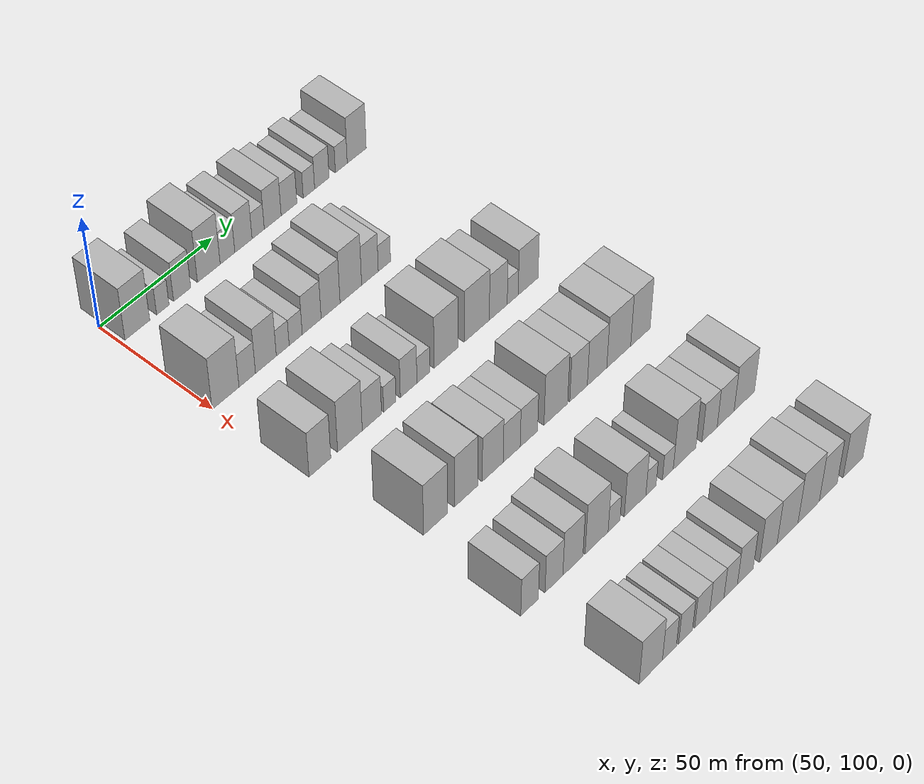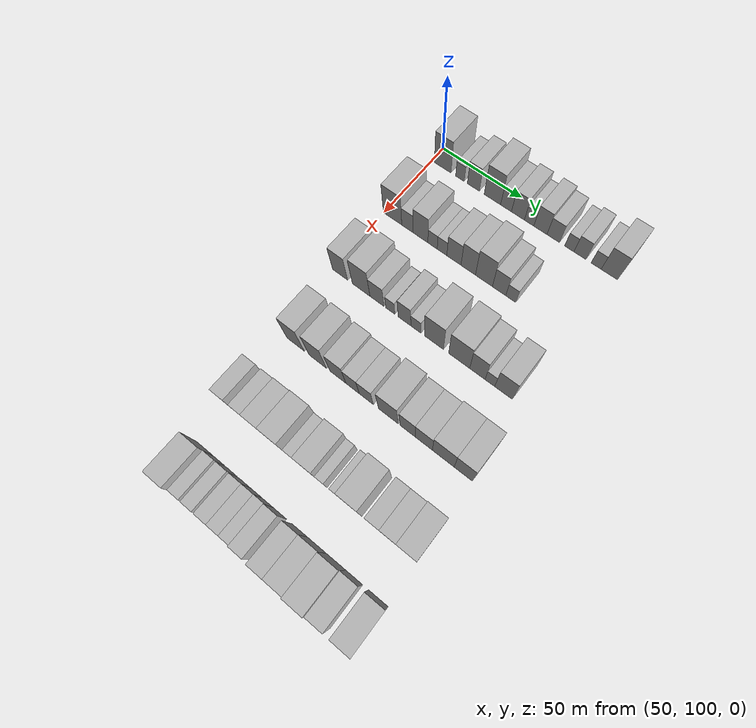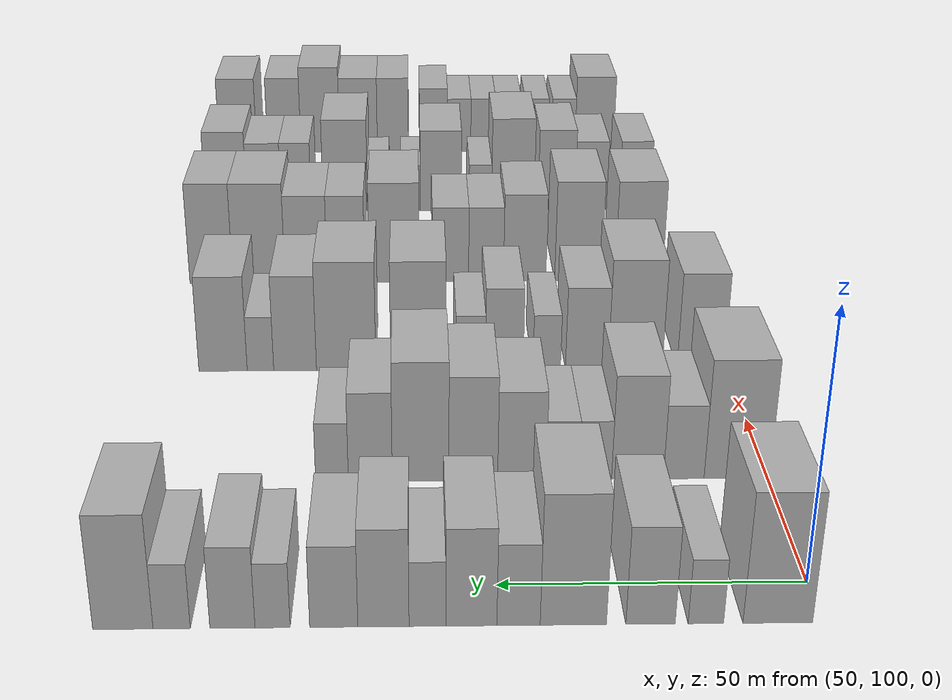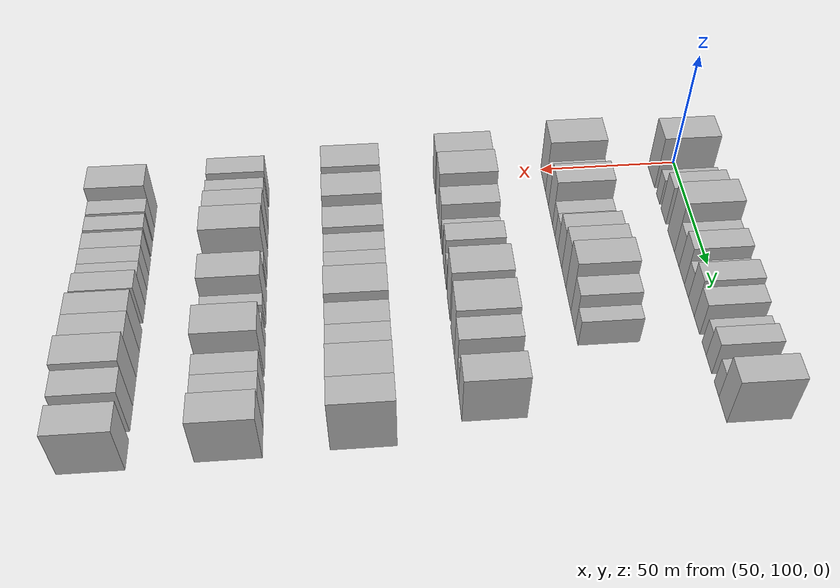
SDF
<sdf version="1.6">
 <world name="default">
  <model name="building_79">
   <static>1</static>
   <pose>50.0000 106.8875 0 0.000000 0.000000 0.000000</pose>
   <link name="link">
    <pose>0 0 12.00 0 0 0</pose>
    <collision name="collision"><geometry><box><size>20.0000 10.8072 24.0000</size></box></geometry></collision>
    <visual name="visual">
     <cast_shadows>0</cast_shadows>
     <geometry><box><size>20.0000 10.8072 24.0000</size></box></geometry>
     <material>
      <script>
       <uri>model://HANNAS_wall/materials/scripts</uri>
       <uri>model://HANNAS_wall/materials/textures</uri>
       <name>vrc/HANNAS_wall</name>
      </script>
     </material>
    </visual>
   </link>
  </model>
  <model name="building_80">
   <static>1</static>
   <pose>50.0000 118.0348 0 0.000000 0.000000 0.000000</pose>
   <link name="link">
    <pose>0 0 6.00 0 0 0</pose>
    <collision name="collision"><geometry><box><size>20.0000 5.4872 12.0000</size></box></geometry></collision>
    <visual name="visual">
     <cast_shadows>0</cast_shadows>
     <geometry><box><size>20.0000 5.4872 12.0000</size></box></geometry>
     <material>
      <script>
       <uri>model://HANNAS_wall/materials/scripts</uri>
       <uri>model://HANNAS_wall/materials/textures</uri>
       <name>vrc/HANNAS_wall</name>
      </script>
     </material>
    </visual>
   </link>
  </model>
  <model name="building_81">
   <static>1</static>
   <pose>50.0000 126.5961 0 0.000000 0.000000 0.000000</pose>
   <link name="link">
    <pose>0 0 9.00 0 0 0</pose>
    <collision name="collision"><geometry><box><size>20.0000 7.6355 18.0000</size></box></geometry></collision>
    <visual name="visual">
     <cast_shadows>0</cast_shadows>
     <geometry><box><size>20.0000 7.6355 18.0000</size></box></geometry>
     <material>
      <script>
       <uri>model://HANNAS_wall/materials/scripts</uri>
       <uri>model://HANNAS_wall/materials/textures</uri>
       <name>vrc/HANNAS_wall</name>
      </script>
     </material>
    </visual>
   </link>
  </model>
  <model name="building_82">
   <static>1</static>
   <pose>50.0000 138.5358 0 0.000000 0.000000 0.000000</pose>
   <link name="link">
    <pose>0 0 12.00 0 0 0</pose>
    <collision name="collision"><geometry><box><size>20.0000 10.2439 24.0000</size></box></geometry></collision>
    <visual name="visual">
     <cast_shadows>0</cast_shadows>
     <geometry><box><size>20.0000 10.2439 24.0000</size></box></geometry>
     <material>
      <script>
       <uri>model://HANNAS_wall/materials/scripts</uri>
       <uri>model://HANNAS_wall/materials/textures</uri>
       <name>vrc/HANNAS_wall</name>
      </script>
     </material>
    </visual>
   </link>
  </model>
  <model name="building_83">
   <static>1</static>
   <pose>50.0000 146.9961 0 0.000000 0.000000 0.000000</pose>
   <link name="link">
    <pose>0 0 7.50 0 0 0</pose>
    <collision name="collision"><geometry><box><size>20.0000 6.6766 15.0000</size></box></geometry></collision>
    <visual name="visual">
     <cast_shadows>0</cast_shadows>
     <geometry><box><size>20.0000 6.6766 15.0000</size></box></geometry>
     <material>
      <script>
       <uri>model://HANNAS_wall/materials/scripts</uri>
       <uri>model://HANNAS_wall/materials/textures</uri>
       <name>vrc/HANNAS_wall</name>
      </script>
     </material>
    </visual>
   </link>
  </model>
  <model name="building_84">
   <static>1</static>
   <pose>50.0000 154.2788 0 0.000000 0.000000 0.000000</pose>
   <link name="link">
    <pose>0 0 9.00 0 0 0</pose>
    <collision name="collision"><geometry><box><size>20.0000 7.8888 18.0000</size></box></geometry></collision>
    <visual name="visual">
     <cast_shadows>0</cast_shadows>
     <geometry><box><size>20.0000 7.8888 18.0000</size></box></geometry>
     <material>
      <script>
       <uri>model://HANNAS_wall/materials/scripts</uri>
       <uri>model://HANNAS_wall/materials/textures</uri>
       <name>vrc/HANNAS_wall</name>
      </script>
     </material>
    </visual>
   </link>
  </model>
  <model name="building_85">
   <static>1</static>
   <pose>50.0000 161.0475 0 0.000000 0.000000 0.000000</pose>
   <link name="link">
    <pose>0 0 6.00 0 0 0</pose>
    <collision name="collision"><geometry><box><size>20.0000 5.6485 12.0000</size></box></geometry></collision>
    <visual name="visual">
     <cast_shadows>0</cast_shadows>
     <geometry><box><size>20.0000 5.6485 12.0000</size></box></geometry>
     <material>
      <script>
       <uri>model://HANNAS_wall/materials/scripts</uri>
       <uri>model://HANNAS_wall/materials/textures</uri>
       <name>vrc/HANNAS_wall</name>
      </script>
     </material>
    </visual>
   </link>
  </model>
  <model name="building_86">
   <static>1</static>
   <pose>50.0000 167.8121 0 0.000000 0.000000 0.000000</pose>
   <link name="link">
    <pose>0 0 9.00 0 0 0</pose>
    <collision name="collision"><geometry><box><size>20.0000 7.8808 18.0000</size></box></geometry></collision>
    <visual name="visual">
     <cast_shadows>0</cast_shadows>
     <geometry><box><size>20.0000 7.8808 18.0000</size></box></geometry>
     <material>
      <script>
       <uri>model://HANNAS_wall/materials/scripts</uri>
       <uri>model://HANNAS_wall/materials/textures</uri>
       <name>vrc/HANNAS_wall</name>
      </script>
     </material>
    </visual>
   </link>
  </model>
  <model name="building_87">
   <static>1</static>
   <pose>50.0000 175.4566 0 0.000000 0.000000 0.000000</pose>
   <link name="link">
    <pose>0 0 7.50 0 0 0</pose>
    <collision name="collision"><geometry><box><size>20.0000 7.4082 15.0000</size></box></geometry></collision>
    <visual name="visual">
     <cast_shadows>0</cast_shadows>
     <geometry><box><size>20.0000 7.4082 15.0000</size></box></geometry>
     <material>
      <script>
       <uri>model://HANNAS_wall/materials/scripts</uri>
       <uri>model://HANNAS_wall/materials/textures</uri>
       <name>vrc/HANNAS_wall</name>
      </script>
     </material>
    </visual>
   </link>
  </model>
  <model name="building_88">
   <static>1</static>
   <pose>50.0000 184.8614 0 0.000000 0.000000 0.000000</pose>
   <link name="link">
    <pose>0 0 6.00 0 0 0</pose>
    <collision name="collision"><geometry><box><size>20.0000 5.4014 12.0000</size></box></geometry></collision>
    <visual name="visual">
     <cast_shadows>0</cast_shadows>
     <geometry><box><size>20.0000 5.4014 12.0000</size></box></geometry>
     <material>
      <script>
       <uri>model://HANNAS_wall/materials/scripts</uri>
       <uri>model://HANNAS_wall/materials/textures</uri>
       <name>vrc/HANNAS_wall</name>
      </script>
     </material>
    </visual>
   </link>
  </model>
  <model name="building_89">
   <static>1</static>
   <pose>50.0000 191.0295 0 0.000000 0.000000 0.000000</pose>
   <link name="link">
    <pose>0 0 7.50 0 0 0</pose>
    <collision name="collision"><geometry><box><size>20.0000 6.9348 15.0000</size></box></geometry></collision>
    <visual name="visual">
     <cast_shadows>0</cast_shadows>
     <geometry><box><size>20.0000 6.9348 15.0000</size></box></geometry>
     <material>
      <script>
       <uri>model://HANNAS_wall/materials/scripts</uri>
       <uri>model://HANNAS_wall/materials/textures</uri>
       <name>vrc/HANNAS_wall</name>
      </script>
     </material>
    </visual>
   </link>
  </model>
  <model name="building_90">
   <static>1</static>
   <pose>50.0000 200.3569 0 0.000000 0.000000 0.000000</pose>
   <link name="link">
    <pose>0 0 6.00 0 0 0</pose>
    <collision name="collision"><geometry><box><size>20.0000 5.7200 12.0000</size></box></geometry></collision>
    <visual name="visual">
     <cast_shadows>0</cast_shadows>
     <geometry><box><size>20.0000 5.7200 12.0000</size></box></geometry>
     <material>
      <script>
       <uri>model://HANNAS_wall/materials/scripts</uri>
       <uri>model://HANNAS_wall/materials/textures</uri>
       <name>vrc/HANNAS_wall</name>
      </script>
     </material>
    </visual>
   </link>
  </model>
  <model name="building_91">
   <static>1</static>
   <pose>50.0000 207.8361 0 0.000000 0.000000 0.000000</pose>
   <link name="link">
    <pose>0 0 10.50 0 0 0</pose>
    <collision name="collision"><geometry><box><size>20.0000 9.2384 21.0000</size></box></geometry></collision>
    <visual name="visual">
     <cast_shadows>0</cast_shadows>
     <geometry><box><size>20.0000 9.2384 21.0000</size></box></geometry>
     <material>
      <script>
       <uri>model://HANNAS_wall/materials/scripts</uri>
       <uri>model://HANNAS_wall/materials/textures</uri>
       <name>vrc/HANNAS_wall</name>
      </script>
     </material>
    </visual>
   </link>
  </model>
  <model name="building_215">
   <static>1</static>
   <pose>90.0000 105.5255 0 0.000000 0.000000 0.000000</pose>
   <link name="link">
    <pose>0 0 12.00 0 0 0</pose>
    <collision name="collision"><geometry><box><size>20.0000 11.7292 24.0000</size></box></geometry></collision>
    <visual name="visual">
     <cast_shadows>0</cast_shadows>
     <geometry><box><size>20.0000 11.7292 24.0000</size></box></geometry>
     <material>
      <script>
       <uri>model://HANNAS_wall/materials/scripts</uri>
       <uri>model://HANNAS_wall/materials/textures</uri>
       <name>vrc/HANNAS_wall</name>
      </script>
     </material>
    </visual>
   </link>
  </model>
  <model name="building_216">
   <static>1</static>
   <pose>90.0000 115.0183 0 0.000000 0.000000 0.000000</pose>
   <link name="link">
    <pose>0 0 7.50 0 0 0</pose>
    <collision name="collision"><geometry><box><size>20.0000 7.2564 15.0000</size></box></geometry></collision>
    <visual name="visual">
     <cast_shadows>0</cast_shadows>
     <geometry><box><size>20.0000 7.2564 15.0000</size></box></geometry>
     <material>
      <script>
       <uri>model://HANNAS_wall/materials/scripts</uri>
       <uri>model://HANNAS_wall/materials/textures</uri>
       <name>vrc/HANNAS_wall</name>
      </script>
     </material>
    </visual>
   </link>
  </model>
  <model name="building_217">
   <static>1</static>
   <pose>90.0000 123.2755 0 0.000000 0.000000 0.000000</pose>
   <link name="link">
    <pose>0 0 10.50 0 0 0</pose>
    <collision name="collision"><geometry><box><size>20.0000 9.2580 21.0000</size></box></geometry></collision>
    <visual name="visual">
     <cast_shadows>0</cast_shadows>
     <geometry><box><size>20.0000 9.2580 21.0000</size></box></geometry>
     <material>
      <script>
       <uri>model://HANNAS_wall/materials/scripts</uri>
       <uri>model://HANNAS_wall/materials/textures</uri>
       <name>vrc/HANNAS_wall</name>
      </script>
     </material>
    </visual>
   </link>
  </model>
  <model name="building_218">
   <static>1</static>
   <pose>90.0000 130.7831 0 0.000000 0.000000 0.000000</pose>
   <link name="link">
    <pose>0 0 6.00 0 0 0</pose>
    <collision name="collision"><geometry><box><size>20.0000 5.7571 12.0000</size></box></geometry></collision>
    <visual name="visual">
     <cast_shadows>0</cast_shadows>
     <geometry><box><size>20.0000 5.7571 12.0000</size></box></geometry>
     <material>
      <script>
       <uri>model://HANNAS_wall/materials/scripts</uri>
       <uri>model://HANNAS_wall/materials/textures</uri>
       <name>vrc/HANNAS_wall</name>
      </script>
     </material>
    </visual>
   </link>
  </model>
  <model name="building_219">
   <static>1</static>
   <pose>90.0000 136.6204 0 0.000000 0.000000 0.000000</pose>
   <link name="link">
    <pose>0 0 6.00 0 0 0</pose>
    <collision name="collision"><geometry><box><size>20.0000 5.9175 12.0000</size></box></geometry></collision>
    <visual name="visual">
     <cast_shadows>0</cast_shadows>
     <geometry><box><size>20.0000 5.9175 12.0000</size></box></geometry>
     <material>
      <script>
       <uri>model://HANNAS_wall/materials/scripts</uri>
       <uri>model://HANNAS_wall/materials/textures</uri>
       <name>vrc/HANNAS_wall</name>
      </script>
     </material>
    </visual>
   </link>
  </model>
  <model name="building_220">
   <static>1</static>
   <pose>90.0000 143.8834 0 0.000000 0.000000 0.000000</pose>
   <link name="link">
    <pose>0 0 9.00 0 0 0</pose>
    <collision name="collision"><geometry><box><size>20.0000 8.6084 18.0000</size></box></geometry></collision>
    <visual name="visual">
     <cast_shadows>0</cast_shadows>
     <geometry><box><size>20.0000 8.6084 18.0000</size></box></geometry>
     <material>
      <script>
       <uri>model://HANNAS_wall/materials/scripts</uri>
       <uri>model://HANNAS_wall/materials/textures</uri>
       <name>vrc/HANNAS_wall</name>
      </script>
     </material>
    </visual>
   </link>
  </model>
  <model name="building_221">
   <static>1</static>
   <pose>90.0000 152.5299 0 0.000000 0.000000 0.000000</pose>
   <link name="link">
    <pose>0 0 10.50 0 0 0</pose>
    <collision name="collision"><geometry><box><size>20.0000 8.6846 21.0000</size></box></geometry></collision>
    <visual name="visual">
     <cast_shadows>0</cast_shadows>
     <geometry><box><size>20.0000 8.6846 21.0000</size></box></geometry>
     <material>
      <script>
       <uri>model://HANNAS_wall/materials/scripts</uri>
       <uri>model://HANNAS_wall/materials/textures</uri>
       <name>vrc/HANNAS_wall</name>
      </script>
     </material>
    </visual>
   </link>
  </model>
  <model name="building_222">
   <static>1</static>
   <pose>90.0000 161.8874 0 0.000000 0.000000 0.000000</pose>
   <link name="link">
    <pose>0 0 12.00 0 0 0</pose>
    <collision name="collision"><geometry><box><size>20.0000 10.0305 24.0000</size></box></geometry></collision>
    <visual name="visual">
     <cast_shadows>0</cast_shadows>
     <geometry><box><size>20.0000 10.0305 24.0000</size></box></geometry>
     <material>
      <script>
       <uri>model://HANNAS_wall/materials/scripts</uri>
       <uri>model://HANNAS_wall/materials/textures</uri>
       <name>vrc/HANNAS_wall</name>
      </script>
     </material>
    </visual>
   </link>
  </model>
  <model name="building_223">
   <static>1</static>
   <pose>90.0000 170.8063 0 0.000000 0.000000 0.000000</pose>
   <link name="link">
    <pose>0 0 9.00 0 0 0</pose>
    <collision name="collision"><geometry><box><size>20.0000 7.8072 18.0000</size></box></geometry></collision>
    <visual name="visual">
     <cast_shadows>0</cast_shadows>
     <geometry><box><size>20.0000 7.8072 18.0000</size></box></geometry>
     <material>
      <script>
       <uri>model://HANNAS_wall/materials/scripts</uri>
       <uri>model://HANNAS_wall/materials/textures</uri>
       <name>vrc/HANNAS_wall</name>
      </script>
     </material>
    </visual>
   </link>
  </model>
  <model name="building_224">
   <static>1</static>
   <pose>90.0000 177.6095 0 0.000000 0.000000 0.000000</pose>
   <link name="link">
    <pose>0 0 6.00 0 0 0</pose>
    <collision name="collision"><geometry><box><size>20.0000 5.7991 12.0000</size></box></geometry></collision>
    <visual name="visual">
     <cast_shadows>0</cast_shadows>
     <geometry><box><size>20.0000 5.7991 12.0000</size></box></geometry>
     <material>
      <script>
       <uri>model://HANNAS_wall/materials/scripts</uri>
       <uri>model://HANNAS_wall/materials/textures</uri>
       <name>vrc/HANNAS_wall</name>
      </script>
     </material>
    </visual>
   </link>
  </model>
  <model name="building_358">
   <static>1</static>
   <pose>130.0000 105.1671 0 0.000000 0.000000 0.000000</pose>
   <link name="link">
    <pose>0 0 10.50 0 0 0</pose>
    <collision name="collision"><geometry><box><size>20.0000 9.5088 21.0000</size></box></geometry></collision>
    <visual name="visual">
     <cast_shadows>0</cast_shadows>
     <geometry><box><size>20.0000 9.5088 21.0000</size></box></geometry>
     <material>
      <script>
       <uri>model://HANNAS_wall/materials/scripts</uri>
       <uri>model://HANNAS_wall/materials/textures</uri>
       <name>vrc/HANNAS_wall</name>
      </script>
     </material>
    </visual>
   </link>
  </model>
  <model name="building_359">
   <static>1</static>
   <pose>130.0000 118.3889 0 0.000000 0.000000 0.000000</pose>
   <link name="link">
    <pose>0 0 12.00 0 0 0</pose>
    <collision name="collision"><geometry><box><size>20.0000 10.9349 24.0000</size></box></geometry></collision>
    <visual name="visual">
     <cast_shadows>0</cast_shadows>
     <geometry><box><size>20.0000 10.9349 24.0000</size></box></geometry>
     <material>
      <script>
       <uri>model://HANNAS_wall/materials/scripts</uri>
       <uri>model://HANNAS_wall/materials/textures</uri>
       <name>vrc/HANNAS_wall</name>
      </script>
     </material>
    </visual>
   </link>
  </model>
  <model name="building_360">
   <static>1</static>
   <pose>130.0000 128.1711 0 0.000000 0.000000 0.000000</pose>
   <link name="link">
    <pose>0 0 9.00 0 0 0</pose>
    <collision name="collision"><geometry><box><size>20.0000 8.6294 18.0000</size></box></geometry></collision>
    <visual name="visual">
     <cast_shadows>0</cast_shadows>
     <geometry><box><size>20.0000 8.6294 18.0000</size></box></geometry>
     <material>
      <script>
       <uri>model://HANNAS_wall/materials/scripts</uri>
       <uri>model://HANNAS_wall/materials/textures</uri>
       <name>vrc/HANNAS_wall</name>
      </script>
     </material>
    </visual>
   </link>
  </model>
  <model name="building_361">
   <static>1</static>
   <pose>130.0000 136.2585 0 0.000000 0.000000 0.000000</pose>
   <link name="link">
    <pose>0 0 6.00 0 0 0</pose>
    <collision name="collision"><geometry><box><size>20.0000 5.5454 12.0000</size></box></geometry></collision>
    <visual name="visual">
     <cast_shadows>0</cast_shadows>
     <geometry><box><size>20.0000 5.5454 12.0000</size></box></geometry>
     <material>
      <script>
       <uri>model://HANNAS_wall/materials/scripts</uri>
       <uri>model://HANNAS_wall/materials/textures</uri>
       <name>vrc/HANNAS_wall</name>
      </script>
     </material>
    </visual>
   </link>
  </model>
  <model name="building_362">
   <static>1</static>
   <pose>130.0000 144.8263 0 0.000000 0.000000 0.000000</pose>
   <link name="link">
    <pose>0 0 9.00 0 0 0</pose>
    <collision name="collision"><geometry><box><size>20.0000 7.5904 18.0000</size></box></geometry></collision>
    <visual name="visual">
     <cast_shadows>0</cast_shadows>
     <geometry><box><size>20.0000 7.5904 18.0000</size></box></geometry>
     <material>
      <script>
       <uri>model://HANNAS_wall/materials/scripts</uri>
       <uri>model://HANNAS_wall/materials/textures</uri>
       <name>vrc/HANNAS_wall</name>
      </script>
     </material>
    </visual>
   </link>
  </model>
  <model name="building_363">
   <static>1</static>
   <pose>130.0000 151.5975 0 0.000000 0.000000 0.000000</pose>
   <link name="link">
    <pose>0 0 6.00 0 0 0</pose>
    <collision name="collision"><geometry><box><size>20.0000 5.9520 12.0000</size></box></geometry></collision>
    <visual name="visual">
     <cast_shadows>0</cast_shadows>
     <geometry><box><size>20.0000 5.9520 12.0000</size></box></geometry>
     <material>
      <script>
       <uri>model://HANNAS_wall/materials/scripts</uri>
       <uri>model://HANNAS_wall/materials/textures</uri>
       <name>vrc/HANNAS_wall</name>
      </script>
     </material>
    </visual>
   </link>
  </model>
  <model name="building_364">
   <static>1</static>
   <pose>130.0000 162.1271 0 0.000000 0.000000 0.000000</pose>
   <link name="link">
    <pose>0 0 12.00 0 0 0</pose>
    <collision name="collision"><geometry><box><size>20.0000 11.1071 24.0000</size></box></geometry></collision>
    <visual name="visual">
     <cast_shadows>0</cast_shadows>
     <geometry><box><size>20.0000 11.1071 24.0000</size></box></geometry>
     <material>
      <script>
       <uri>model://HANNAS_wall/materials/scripts</uri>
       <uri>model://HANNAS_wall/materials/textures</uri>
       <name>vrc/HANNAS_wall</name>
      </script>
     </material>
    </visual>
   </link>
  </model>
  <model name="building_365">
   <static>1</static>
   <pose>130.0000 176.6430 0 0.000000 0.000000 0.000000</pose>
   <link name="link">
    <pose>0 0 12.00 0 0 0</pose>
    <collision name="collision"><geometry><box><size>20.0000 11.9247 24.0000</size></box></geometry></collision>
    <visual name="visual">
     <cast_shadows>0</cast_shadows>
     <geometry><box><size>20.0000 11.9247 24.0000</size></box></geometry>
     <material>
      <script>
       <uri>model://HANNAS_wall/materials/scripts</uri>
       <uri>model://HANNAS_wall/materials/textures</uri>
       <name>vrc/HANNAS_wall</name>
      </script>
     </material>
    </visual>
   </link>
  </model>
  <model name="building_366">
   <static>1</static>
   <pose>130.0000 186.8994 0 0.000000 0.000000 0.000000</pose>
   <link name="link">
    <pose>0 0 10.50 0 0 0</pose>
    <collision name="collision"><geometry><box><size>20.0000 8.5882 21.0000</size></box></geometry></collision>
    <visual name="visual">
     <cast_shadows>0</cast_shadows>
     <geometry><box><size>20.0000 8.5882 21.0000</size></box></geometry>
     <material>
      <script>
       <uri>model://HANNAS_wall/materials/scripts</uri>
       <uri>model://HANNAS_wall/materials/textures</uri>
       <name>vrc/HANNAS_wall</name>
      </script>
     </material>
    </visual>
   </link>
  </model>
  <model name="building_367">
   <static>1</static>
   <pose>130.0000 193.8571 0 0.000000 0.000000 0.000000</pose>
   <link name="link">
    <pose>0 0 6.00 0 0 0</pose>
    <collision name="collision"><geometry><box><size>20.0000 5.3273 12.0000</size></box></geometry></collision>
    <visual name="visual">
     <cast_shadows>0</cast_shadows>
     <geometry><box><size>20.0000 5.3273 12.0000</size></box></geometry>
     <material>
      <script>
       <uri>model://HANNAS_wall/materials/scripts</uri>
       <uri>model://HANNAS_wall/materials/textures</uri>
       <name>vrc/HANNAS_wall</name>
      </script>
     </material>
    </visual>
   </link>
  </model>
  <model name="building_368">
   <static>1</static>
   <pose>130.0000 201.3632 0 0.000000 0.000000 0.000000</pose>
   <link name="link">
    <pose>0 0 10.50 0 0 0</pose>
    <collision name="collision"><geometry><box><size>20.0000 9.6849 21.0000</size></box></geometry></collision>
    <visual name="visual">
     <cast_shadows>0</cast_shadows>
     <geometry><box><size>20.0000 9.6849 21.0000</size></box></geometry>
     <material>
      <script>
       <uri>model://HANNAS_wall/materials/scripts</uri>
       <uri>model://HANNAS_wall/materials/textures</uri>
       <name>vrc/HANNAS_wall</name>
      </script>
     </material>
    </visual>
   </link>
  </model>
  <model name="building_487">
   <static>1</static>
   <pose>170.0000 112.3662 0 0.000000 0.000000 0.000000</pose>
   <link name="link">
    <pose>0 0 12.00 0 0 0</pose>
    <collision name="collision"><geometry><box><size>20.0000 10.7012 24.0000</size></box></geometry></collision>
    <visual name="visual">
     <cast_shadows>0</cast_shadows>
     <geometry><box><size>20.0000 10.7012 24.0000</size></box></geometry>
     <material>
      <script>
       <uri>model://HANNAS_wall/materials/scripts</uri>
       <uri>model://HANNAS_wall/materials/textures</uri>
       <name>vrc/HANNAS_wall</name>
      </script>
     </material>
    </visual>
   </link>
  </model>
  <model name="building_488">
   <static>1</static>
   <pose>170.0000 125.9970 0 0.000000 0.000000 0.000000</pose>
   <link name="link">
    <pose>0 0 12.00 0 0 0</pose>
    <collision name="collision"><geometry><box><size>20.0000 10.5605 24.0000</size></box></geometry></collision>
    <visual name="visual">
     <cast_shadows>0</cast_shadows>
     <geometry><box><size>20.0000 10.5605 24.0000</size></box></geometry>
     <material>
      <script>
       <uri>model://HANNAS_wall/materials/scripts</uri>
       <uri>model://HANNAS_wall/materials/textures</uri>
       <name>vrc/HANNAS_wall</name>
      </script>
     </material>
    </visual>
   </link>
  </model>
  <model name="building_489">
   <static>1</static>
   <pose>170.0000 138.0459 0 0.000000 0.000000 0.000000</pose>
   <link name="link">
    <pose>0 0 10.50 0 0 0</pose>
    <collision name="collision"><geometry><box><size>20.0000 9.5371 21.0000</size></box></geometry></collision>
    <visual name="visual">
     <cast_shadows>0</cast_shadows>
     <geometry><box><size>20.0000 9.5371 21.0000</size></box></geometry>
     <material>
      <script>
       <uri>model://HANNAS_wall/materials/scripts</uri>
       <uri>model://HANNAS_wall/materials/textures</uri>
       <name>vrc/HANNAS_wall</name>
      </script>
     </material>
    </visual>
   </link>
  </model>
  <model name="building_490">
   <static>1</static>
   <pose>170.0000 146.7457 0 0.000000 0.000000 0.000000</pose>
   <link name="link">
    <pose>0 0 9.00 0 0 0</pose>
    <collision name="collision"><geometry><box><size>20.0000 7.8626 18.0000</size></box></geometry></collision>
    <visual name="visual">
     <cast_shadows>0</cast_shadows>
     <geometry><box><size>20.0000 7.8626 18.0000</size></box></geometry>
     <material>
      <script>
       <uri>model://HANNAS_wall/materials/scripts</uri>
       <uri>model://HANNAS_wall/materials/textures</uri>
       <name>vrc/HANNAS_wall</name>
      </script>
     </material>
    </visual>
   </link>
  </model>
  <model name="building_491">
   <static>1</static>
   <pose>170.0000 154.7294 0 0.000000 0.000000 0.000000</pose>
   <link name="link">
    <pose>0 0 9.00 0 0 0</pose>
    <collision name="collision"><geometry><box><size>20.0000 8.1048 18.0000</size></box></geometry></collision>
    <visual name="visual">
     <cast_shadows>0</cast_shadows>
     <geometry><box><size>20.0000 8.1048 18.0000</size></box></geometry>
     <material>
      <script>
       <uri>model://HANNAS_wall/materials/scripts</uri>
       <uri>model://HANNAS_wall/materials/textures</uri>
       <name>vrc/HANNAS_wall</name>
      </script>
     </material>
    </visual>
   </link>
  </model>
  <model name="building_492">
   <static>1</static>
   <pose>170.0000 167.3906 0 0.000000 0.000000 0.000000</pose>
   <link name="link">
    <pose>0 0 12.00 0 0 0</pose>
    <collision name="collision"><geometry><box><size>20.0000 11.2178 24.0000</size></box></geometry></collision>
    <visual name="visual">
     <cast_shadows>0</cast_shadows>
     <geometry><box><size>20.0000 11.2178 24.0000</size></box></geometry>
     <material>
      <script>
       <uri>model://HANNAS_wall/materials/scripts</uri>
       <uri>model://HANNAS_wall/materials/textures</uri>
       <name>vrc/HANNAS_wall</name>
      </script>
     </material>
    </visual>
   </link>
  </model>
  <model name="building_493">
   <static>1</static>
   <pose>170.0000 178.2123 0 0.000000 0.000000 0.000000</pose>
   <link name="link">
    <pose>0 0 10.50 0 0 0</pose>
    <collision name="collision"><geometry><box><size>20.0000 8.4255 21.0000</size></box></geometry></collision>
    <visual name="visual">
     <cast_shadows>0</cast_shadows>
     <geometry><box><size>20.0000 8.4255 21.0000</size></box></geometry>
     <material>
      <script>
       <uri>model://HANNAS_wall/materials/scripts</uri>
       <uri>model://HANNAS_wall/materials/textures</uri>
       <name>vrc/HANNAS_wall</name>
      </script>
     </material>
    </visual>
   </link>
  </model>
  <model name="building_494">
   <static>1</static>
   <pose>170.0000 187.1427 0 0.000000 0.000000 0.000000</pose>
   <link name="link">
    <pose>0 0 10.50 0 0 0</pose>
    <collision name="collision"><geometry><box><size>20.0000 9.4354 21.0000</size></box></geometry></collision>
    <visual name="visual">
     <cast_shadows>0</cast_shadows>
     <geometry><box><size>20.0000 9.4354 21.0000</size></box></geometry>
     <material>
      <script>
       <uri>model://HANNAS_wall/materials/scripts</uri>
       <uri>model://HANNAS_wall/materials/textures</uri>
       <name>vrc/HANNAS_wall</name>
      </script>
     </material>
    </visual>
   </link>
  </model>
  <model name="building_495">
   <static>1</static>
   <pose>170.0000 197.7175 0 0.000000 0.000000 0.000000</pose>
   <link name="link">
    <pose>0 0 12.00 0 0 0</pose>
    <collision name="collision"><geometry><box><size>20.0000 11.7142 24.0000</size></box></geometry></collision>
    <visual name="visual">
     <cast_shadows>0</cast_shadows>
     <geometry><box><size>20.0000 11.7142 24.0000</size></box></geometry>
     <material>
      <script>
       <uri>model://HANNAS_wall/materials/scripts</uri>
       <uri>model://HANNAS_wall/materials/textures</uri>
       <name>vrc/HANNAS_wall</name>
      </script>
     </material>
    </visual>
   </link>
  </model>
  <model name="building_496">
   <static>1</static>
   <pose>170.0000 208.4007 0 0.000000 0.000000 0.000000</pose>
   <link name="link">
    <pose>0 0 12.00 0 0 0</pose>
    <collision name="collision"><geometry><box><size>20.0000 9.6523 24.0000</size></box></geometry></collision>
    <visual name="visual">
     <cast_shadows>0</cast_shadows>
     <geometry><box><size>20.0000 9.6523 24.0000</size></box></geometry>
     <material>
      <script>
       <uri>model://HANNAS_wall/materials/scripts</uri>
       <uri>model://HANNAS_wall/materials/textures</uri>
       <name>vrc/HANNAS_wall</name>
      </script>
     </material>
    </visual>
   </link>
  </model>
  <model name="building_628">
   <static>1</static>
   <pose>210.0000 108.0043 0 0.000000 0.000000 0.000000</pose>
   <link name="link">
    <pose>0 0 9.00 0 0 0</pose>
    <collision name="collision"><geometry><box><size>20.0000 7.7896 18.0000</size></box></geometry></collision>
    <visual name="visual">
     <cast_shadows>0</cast_shadows>
     <geometry><box><size>20.0000 7.7896 18.0000</size></box></geometry>
     <material>
      <script>
       <uri>model://HANNAS_wall/materials/scripts</uri>
       <uri>model://HANNAS_wall/materials/textures</uri>
       <name>vrc/HANNAS_wall</name>
      </script>
     </material>
    </visual>
   </link>
  </model>
  <model name="building_629">
   <static>1</static>
   <pose>210.0000 118.9035 0 0.000000 0.000000 0.000000</pose>
   <link name="link">
    <pose>0 0 9.00 0 0 0</pose>
    <collision name="collision"><geometry><box><size>20.0000 8.0087 18.0000</size></box></geometry></collision>
    <visual name="visual">
     <cast_shadows>0</cast_shadows>
     <geometry><box><size>20.0000 8.0087 18.0000</size></box></geometry>
     <material>
      <script>
       <uri>model://HANNAS_wall/materials/scripts</uri>
       <uri>model://HANNAS_wall/materials/textures</uri>
       <name>vrc/HANNAS_wall</name>
      </script>
     </material>
    </visual>
   </link>
  </model>
  <model name="building_630">
   <static>1</static>
   <pose>210.0000 127.4762 0 0.000000 0.000000 0.000000</pose>
   <link name="link">
    <pose>0 0 10.50 0 0 0</pose>
    <collision name="collision"><geometry><box><size>20.0000 9.1366 21.0000</size></box></geometry></collision>
    <visual name="visual">
     <cast_shadows>0</cast_shadows>
     <geometry><box><size>20.0000 9.1366 21.0000</size></box></geometry>
     <material>
      <script>
       <uri>model://HANNAS_wall/materials/scripts</uri>
       <uri>model://HANNAS_wall/materials/textures</uri>
       <name>vrc/HANNAS_wall</name>
      </script>
     </material>
    </visual>
   </link>
  </model>
  <model name="building_631">
   <static>1</static>
   <pose>210.0000 138.3344 0 0.000000 0.000000 0.000000</pose>
   <link name="link">
    <pose>0 0 12.00 0 0 0</pose>
    <collision name="collision"><geometry><box><size>20.0000 10.5798 24.0000</size></box></geometry></collision>
    <visual name="visual">
     <cast_shadows>0</cast_shadows>
     <geometry><box><size>20.0000 10.5798 24.0000</size></box></geometry>
     <material>
      <script>
       <uri>model://HANNAS_wall/materials/scripts</uri>
       <uri>model://HANNAS_wall/materials/textures</uri>
       <name>vrc/HANNAS_wall</name>
      </script>
     </material>
    </visual>
   </link>
  </model>
  <model name="building_632">
   <static>1</static>
   <pose>210.0000 146.4017 0 0.000000 0.000000 0.000000</pose>
   <link name="link">
    <pose>0 0 6.00 0 0 0</pose>
    <collision name="collision"><geometry><box><size>20.0000 5.5547 12.0000</size></box></geometry></collision>
    <visual name="visual">
     <cast_shadows>0</cast_shadows>
     <geometry><box><size>20.0000 5.5547 12.0000</size></box></geometry>
     <material>
      <script>
       <uri>model://HANNAS_wall/materials/scripts</uri>
       <uri>model://HANNAS_wall/materials/textures</uri>
       <name>vrc/HANNAS_wall</name>
      </script>
     </material>
    </visual>
   </link>
  </model>
  <model name="building_633">
   <static>1</static>
   <pose>210.0000 156.2569 0 0.000000 0.000000 0.000000</pose>
   <link name="link">
    <pose>0 0 10.50 0 0 0</pose>
    <collision name="collision"><geometry><box><size>20.0000 10.1557 21.0000</size></box></geometry></collision>
    <visual name="visual">
     <cast_shadows>0</cast_shadows>
     <geometry><box><size>20.0000 10.1557 21.0000</size></box></geometry>
     <material>
      <script>
       <uri>model://HANNAS_wall/materials/scripts</uri>
       <uri>model://HANNAS_wall/materials/textures</uri>
       <name>vrc/HANNAS_wall</name>
      </script>
     </material>
    </visual>
   </link>
  </model>
  <model name="building_634">
   <static>1</static>
   <pose>210.0000 163.7623 0 0.000000 0.000000 0.000000</pose>
   <link name="link">
    <pose>0 0 6.00 0 0 0</pose>
    <collision name="collision"><geometry><box><size>20.0000 4.8551 12.0000</size></box></geometry></collision>
    <visual name="visual">
     <cast_shadows>0</cast_shadows>
     <geometry><box><size>20.0000 4.8551 12.0000</size></box></geometry>
     <material>
      <script>
       <uri>model://HANNAS_wall/materials/scripts</uri>
       <uri>model://HANNAS_wall/materials/textures</uri>
       <name>vrc/HANNAS_wall</name>
      </script>
     </material>
    </visual>
   </link>
  </model>
  <model name="building_635">
   <static>1</static>
   <pose>210.0000 171.8020 0 0.000000 0.000000 0.000000</pose>
   <link name="link">
    <pose>0 0 6.00 0 0 0</pose>
    <collision name="collision"><geometry><box><size>20.0000 5.2244 12.0000</size></box></geometry></collision>
    <visual name="visual">
     <cast_shadows>0</cast_shadows>
     <geometry><box><size>20.0000 5.2244 12.0000</size></box></geometry>
     <material>
      <script>
       <uri>model://HANNAS_wall/materials/scripts</uri>
       <uri>model://HANNAS_wall/materials/textures</uri>
       <name>vrc/HANNAS_wall</name>
      </script>
     </material>
    </visual>
   </link>
  </model>
  <model name="building_636">
   <static>1</static>
   <pose>210.0000 179.8913 0 0.000000 0.000000 0.000000</pose>
   <link name="link">
    <pose>0 0 12.00 0 0 0</pose>
    <collision name="collision"><geometry><box><size>20.0000 10.9542 24.0000</size></box></geometry></collision>
    <visual name="visual">
     <cast_shadows>0</cast_shadows>
     <geometry><box><size>20.0000 10.9542 24.0000</size></box></geometry>
     <material>
      <script>
       <uri>model://HANNAS_wall/materials/scripts</uri>
       <uri>model://HANNAS_wall/materials/textures</uri>
       <name>vrc/HANNAS_wall</name>
      </script>
     </material>
    </visual>
   </link>
  </model>
  <model name="building_637">
   <static>1</static>
   <pose>210.0000 192.0999 0 0.000000 0.000000 0.000000</pose>
   <link name="link">
    <pose>0 0 9.00 0 0 0</pose>
    <collision name="collision"><geometry><box><size>20.0000 7.4629 18.0000</size></box></geometry></collision>
    <visual name="visual">
     <cast_shadows>0</cast_shadows>
     <geometry><box><size>20.0000 7.4629 18.0000</size></box></geometry>
     <material>
      <script>
       <uri>model://HANNAS_wall/materials/scripts</uri>
       <uri>model://HANNAS_wall/materials/textures</uri>
       <name>vrc/HANNAS_wall</name>
      </script>
     </material>
    </visual>
   </link>
  </model>
  <model name="building_638">
   <static>1</static>
   <pose>210.0000 200.0499 0 0.000000 0.000000 0.000000</pose>
   <link name="link">
    <pose>0 0 9.00 0 0 0</pose>
    <collision name="collision"><geometry><box><size>20.0000 8.4372 18.0000</size></box></geometry></collision>
    <visual name="visual">
     <cast_shadows>0</cast_shadows>
     <geometry><box><size>20.0000 8.4372 18.0000</size></box></geometry>
     <material>
      <script>
       <uri>model://HANNAS_wall/materials/scripts</uri>
       <uri>model://HANNAS_wall/materials/textures</uri>
       <name>vrc/HANNAS_wall</name>
      </script>
     </material>
    </visual>
   </link>
  </model>
  <model name="building_639">
   <static>1</static>
   <pose>210.0000 209.3535 0 0.000000 0.000000 0.000000</pose>
   <link name="link">
    <pose>0 0 10.50 0 0 0</pose>
    <collision name="collision"><geometry><box><size>20.0000 10.1700 21.0000</size></box></geometry></collision>
    <visual name="visual">
     <cast_shadows>0</cast_shadows>
     <geometry><box><size>20.0000 10.1700 21.0000</size></box></geometry>
     <material>
      <script>
       <uri>model://HANNAS_wall/materials/scripts</uri>
       <uri>model://HANNAS_wall/materials/textures</uri>
       <name>vrc/HANNAS_wall</name>
      </script>
     </material>
    </visual>
   </link>
  </model>
  <model name="building_767">
   <static>1</static>
   <pose>250.0000 113.7744 0 0.000000 0.000000 0.000000</pose>
   <link name="link">
    <pose>0 0 10.50 0 0 0</pose>
    <collision name="collision"><geometry><box><size>20.0000 10.4939 21.0000</size></box></geometry></collision>
    <visual name="visual">
     <cast_shadows>0</cast_shadows>
     <geometry><box><size>20.0000 10.4939 21.0000</size></box></geometry>
     <material>
      <script>
       <uri>model://HANNAS_wall/materials/scripts</uri>
       <uri>model://HANNAS_wall/materials/textures</uri>
       <name>vrc/HANNAS_wall</name>
      </script>
     </material>
    </visual>
   </link>
  </model>
  <model name="building_768">
   <static>1</static>
   <pose>250.0000 122.1995 0 0.000000 0.000000 0.000000</pose>
   <link name="link">
    <pose>0 0 7.50 0 0 0</pose>
    <collision name="collision"><geometry><box><size>20.0000 6.3563 15.0000</size></box></geometry></collision>
    <visual name="visual">
     <cast_shadows>0</cast_shadows>
     <geometry><box><size>20.0000 6.3563 15.0000</size></box></geometry>
     <material>
      <script>
       <uri>model://HANNAS_wall/materials/scripts</uri>
       <uri>model://HANNAS_wall/materials/textures</uri>
       <name>vrc/HANNAS_wall</name>
      </script>
     </material>
    </visual>
   </link>
  </model>
  <model name="building_769">
   <static>1</static>
   <pose>250.0000 129.5859 0 0.000000 0.000000 0.000000</pose>
   <link name="link">
    <pose>0 0 7.50 0 0 0</pose>
    <collision name="collision"><geometry><box><size>20.0000 6.4165 15.0000</size></box></geometry></collision>
    <visual name="visual">
     <cast_shadows>0</cast_shadows>
     <geometry><box><size>20.0000 6.4165 15.0000</size></box></geometry>
     <material>
      <script>
       <uri>model://HANNAS_wall/materials/scripts</uri>
       <uri>model://HANNAS_wall/materials/textures</uri>
       <name>vrc/HANNAS_wall</name>
      </script>
     </material>
    </visual>
   </link>
  </model>
  <model name="building_770">
   <static>1</static>
   <pose>250.0000 137.2701 0 0.000000 0.000000 0.000000</pose>
   <link name="link">
    <pose>0 0 7.50 0 0 0</pose>
    <collision name="collision"><geometry><box><size>20.0000 6.9520 15.0000</size></box></geometry></collision>
    <visual name="visual">
     <cast_shadows>0</cast_shadows>
     <geometry><box><size>20.0000 6.9520 15.0000</size></box></geometry>
     <material>
      <script>
       <uri>model://HANNAS_wall/materials/scripts</uri>
       <uri>model://HANNAS_wall/materials/textures</uri>
       <name>vrc/HANNAS_wall</name>
      </script>
     </material>
    </visual>
   </link>
  </model>
  <model name="building_771">
   <static>1</static>
   <pose>250.0000 144.0779 0 0.000000 0.000000 0.000000</pose>
   <link name="link">
    <pose>0 0 7.50 0 0 0</pose>
    <collision name="collision"><geometry><box><size>20.0000 6.6635 15.0000</size></box></geometry></collision>
    <visual name="visual">
     <cast_shadows>0</cast_shadows>
     <geometry><box><size>20.0000 6.6635 15.0000</size></box></geometry>
     <material>
      <script>
       <uri>model://HANNAS_wall/materials/scripts</uri>
       <uri>model://HANNAS_wall/materials/textures</uri>
       <name>vrc/HANNAS_wall</name>
      </script>
     </material>
    </visual>
   </link>
  </model>
  <model name="building_772">
   <static>1</static>
   <pose>250.0000 150.6025 0 0.000000 0.000000 0.000000</pose>
   <link name="link">
    <pose>0 0 7.50 0 0 0</pose>
    <collision name="collision"><geometry><box><size>20.0000 6.3857 15.0000</size></box></geometry></collision>
    <visual name="visual">
     <cast_shadows>0</cast_shadows>
     <geometry><box><size>20.0000 6.3857 15.0000</size></box></geometry>
     <material>
      <script>
       <uri>model://HANNAS_wall/materials/scripts</uri>
       <uri>model://HANNAS_wall/materials/textures</uri>
       <name>vrc/HANNAS_wall</name>
      </script>
     </material>
    </visual>
   </link>
  </model>
  <model name="building_773">
   <static>1</static>
   <pose>250.0000 157.5710 0 0.000000 0.000000 0.000000</pose>
   <link name="link">
    <pose>0 0 9.00 0 0 0</pose>
    <collision name="collision"><geometry><box><size>20.0000 7.5514 18.0000</size></box></geometry></collision>
    <visual name="visual">
     <cast_shadows>0</cast_shadows>
     <geometry><box><size>20.0000 7.5514 18.0000</size></box></geometry>
     <material>
      <script>
       <uri>model://HANNAS_wall/materials/scripts</uri>
       <uri>model://HANNAS_wall/materials/textures</uri>
       <name>vrc/HANNAS_wall</name>
      </script>
     </material>
    </visual>
   </link>
  </model>
  <model name="building_774">
   <static>1</static>
   <pose>250.0000 168.5610 0 0.000000 0.000000 0.000000</pose>
   <link name="link">
    <pose>0 0 10.50 0 0 0</pose>
    <collision name="collision"><geometry><box><size>20.0000 8.4285 21.0000</size></box></geometry></collision>
    <visual name="visual">
     <cast_shadows>0</cast_shadows>
     <geometry><box><size>20.0000 8.4285 21.0000</size></box></geometry>
     <material>
      <script>
       <uri>model://HANNAS_wall/materials/scripts</uri>
       <uri>model://HANNAS_wall/materials/textures</uri>
       <name>vrc/HANNAS_wall</name>
      </script>
     </material>
    </visual>
   </link>
  </model>
  <model name="building_775">
   <static>1</static>
   <pose>250.0000 177.9125 0 0.000000 0.000000 0.000000</pose>
   <link name="link">
    <pose>0 0 10.50 0 0 0</pose>
    <collision name="collision"><geometry><box><size>20.0000 10.2744 21.0000</size></box></geometry></collision>
    <visual name="visual">
     <cast_shadows>0</cast_shadows>
     <geometry><box><size>20.0000 10.2744 21.0000</size></box></geometry>
     <material>
      <script>
       <uri>model://HANNAS_wall/materials/scripts</uri>
       <uri>model://HANNAS_wall/materials/textures</uri>
       <name>vrc/HANNAS_wall</name>
      </script>
     </material>
    </visual>
   </link>
  </model>
  <model name="building_776">
   <static>1</static>
   <pose>250.0000 188.2983 0 0.000000 0.000000 0.000000</pose>
   <link name="link">
    <pose>0 0 12.00 0 0 0</pose>
    <collision name="collision"><geometry><box><size>20.0000 10.4972 24.0000</size></box></geometry></collision>
    <visual name="visual">
     <cast_shadows>0</cast_shadows>
     <geometry><box><size>20.0000 10.4972 24.0000</size></box></geometry>
     <material>
      <script>
       <uri>model://HANNAS_wall/materials/scripts</uri>
       <uri>model://HANNAS_wall/materials/textures</uri>
       <name>vrc/HANNAS_wall</name>
      </script>
     </material>
    </visual>
   </link>
  </model>
  <model name="building_777">
   <static>1</static>
   <pose>250.0000 198.0419 0 0.000000 0.000000 0.000000</pose>
   <link name="link">
    <pose>0 0 10.50 0 0 0</pose>
    <collision name="collision"><geometry><box><size>20.0000 8.9900 21.0000</size></box></geometry></collision>
    <visual name="visual">
     <cast_shadows>0</cast_shadows>
     <geometry><box><size>20.0000 8.9900 21.0000</size></box></geometry>
     <material>
      <script>
       <uri>model://HANNAS_wall/materials/scripts</uri>
       <uri>model://HANNAS_wall/materials/textures</uri>
       <name>vrc/HANNAS_wall</name>
      </script>
     </material>
    </visual>
   </link>
  </model>
  <model name="building_778">
   <static>1</static>
   <pose>250.0000 210.5770 0 0.000000 0.000000 0.000000</pose>
   <link name="link">
    <pose>0 0 10.50 0 0 0</pose>
    <collision name="collision"><geometry><box><size>20.0000 10.0803 21.0000</size></box></geometry></collision>
    <visual name="visual">
     <cast_shadows>0</cast_shadows>
     <geometry><box><size>20.0000 10.0803 21.0000</size></box></geometry>
     <material>
      <script>
       <uri>model://HANNAS_wall/materials/scripts</uri>
       <uri>model://HANNAS_wall/materials/textures</uri>
       <name>vrc/HANNAS_wall</name>
      </script>
     </material>
    </visual>
   </link>
  </model>
 </world>
</sdf>
